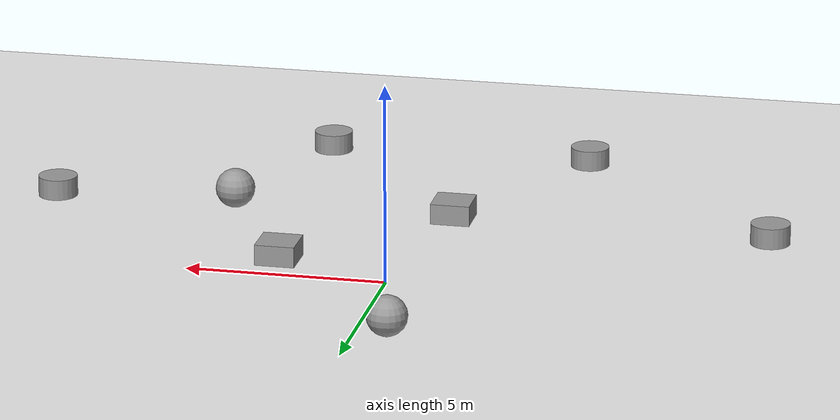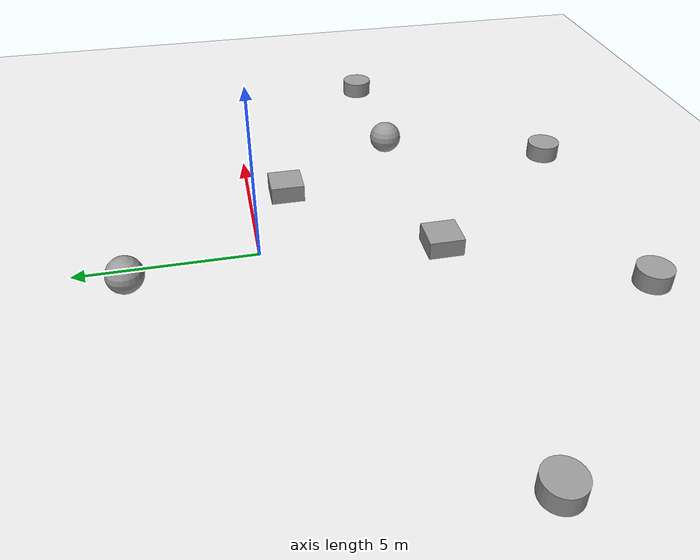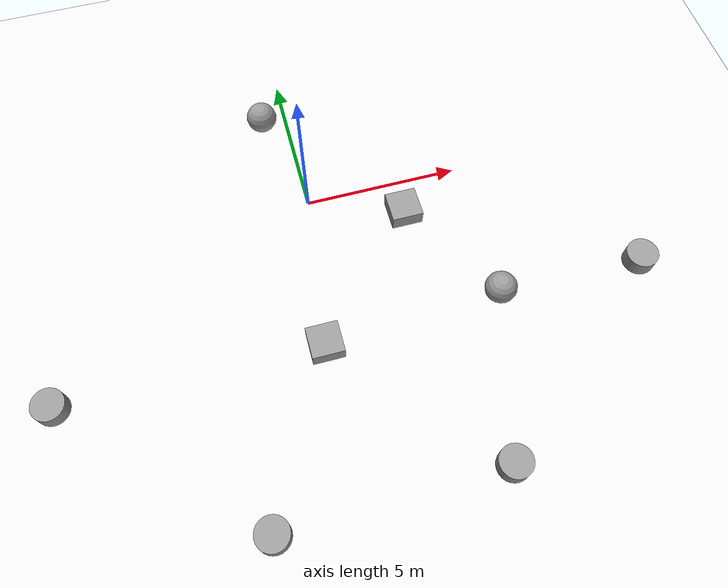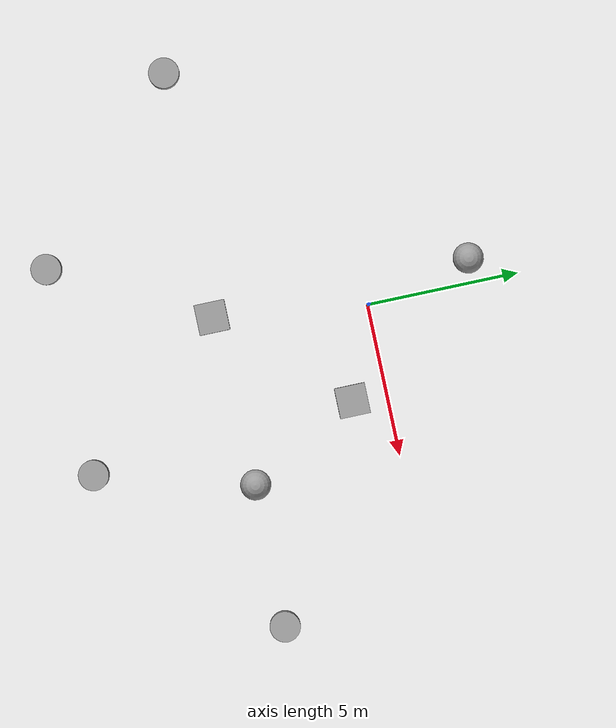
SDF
<sdf version="1.7">
 <world name="default">
  <model name="ground_plane">
   <static>1</static>
   <link name="link">
    <collision name="collision">
     <geometry><plane><normal>0 0 1</normal><size>100 100</size></plane></geometry>
     <surface><friction><ode><mu>100</mu><mu2>50</mu2></ode></friction></surface>
    </collision>
    <visual name="visual">
     <cast_shadows>0</cast_shadows>
     <geometry><plane><normal>0 0 1</normal><size>100 100</size></plane></geometry>
     <material>
      <script><uri>file://media/materials/scripts/gazebo.material</uri><name>Gazebo/White</name></script>
     </material>
    </visual>
   </link>
  </model>
  <model name="model2.4">
   <link name="link_4">
    <inertial>
     <mass>1</mass>
     <inertia><ixx>0.145833</ixx><ixy>0</ixy><ixz>0</ixz><iyy>0.145833</iyy><iyz>0</iyz><izz>0.125</izz></inertia>
    </inertial>
    <pose>-3e-06 0 0 0 -0 0</pose>
    <visual name="visual">
     <geometry><cylinder><radius>0.5</radius><length>1</length></cylinder></geometry>
     <material>
      <lighting>1</lighting>
      <script><uri>file://media/materials/scripts/gazebo.material</uri><name>Gazebo/Grey</name></script>
      <shader type="pixel"/>
     </material>
    </visual>
    <collision name="collision">
     <geometry><cylinder><radius>0.5</radius><length>1</length></cylinder></geometry>
     <surface>
      <friction>
       <ode><mu>1</mu><mu2>1</mu2><fdir1>0 0 0</fdir1><slip1>0</slip1><slip2>0</slip2></ode>
       <torsional>
        <coefficient>1</coefficient>
        <patch_radius>0</patch_radius>
        <surface_radius>0</surface_radius>
        <use_patch_radius>1</use_patch_radius>
        <ode><slip>0</slip></ode>
       </torsional>
      </friction>
      <bounce><restitution_coefficient>0</restitution_coefficient><threshold>1e+06</threshold></bounce>
      <contact>
       <collide_without_contact>0</collide_without_contact>
       <collide_without_contact_bitmask>1</collide_without_contact_bitmask>
       <collide_bitmask>1</collide_bitmask>
       <ode>
        <soft_cfm>0</soft_cfm>
        <soft_erp>0.2</soft_erp>
        <kp>1e+13</kp>
        <kd>1</kd>
        <max_vel>0.01</max_vel>
        <min_depth>0</min_depth>
       </ode>
       <bullet>
        <split_impulse>1</split_impulse>
        <split_impulse_penetration_threshold>-0.01</split_impulse_penetration_threshold>
        <soft_cfm>0</soft_cfm>
        <soft_erp>0.2</soft_erp>
        <kp>1e+13</kp>
        <kd>1</kd>
       </bullet>
      </contact>
     </surface>
    </collision>
   </link>
   <static>0</static>
   <pose>-8.72092 -4.88792 0 0 -0 0</pose>
  </model>
  <model name="model2.3">
   <link name="link_11">
    <inertial>
     <mass>1</mass>
     <inertia><ixx>0.145833</ixx><ixy>0</ixy><ixz>0</ixz><iyy>0.145833</iyy><iyz>0</iyz><izz>0.125</izz></inertia>
    </inertial>
    <pose>-3e-06 0 0 0 -0 0</pose>
    <visual name="visual">
     <geometry><cylinder><radius>0.5</radius><length>1</length></cylinder></geometry>
     <material>
      <lighting>1</lighting>
      <script><uri>file://media/materials/scripts/gazebo.material</uri><name>Gazebo/Grey</name></script>
      <shader type="pixel"/>
     </material>
    </visual>
    <collision name="collision">
     <geometry><cylinder><radius>0.5</radius><length>1</length></cylinder></geometry>
     <surface>
      <friction>
       <ode><mu>1</mu><mu2>1</mu2><fdir1>0 0 0</fdir1><slip1>0</slip1><slip2>0</slip2></ode>
       <torsional>
        <coefficient>1</coefficient>
        <patch_radius>0</patch_radius>
        <surface_radius>0</surface_radius>
        <use_patch_radius>1</use_patch_radius>
        <ode><slip>0</slip></ode>
       </torsional>
      </friction>
      <bounce><restitution_coefficient>0</restitution_coefficient><threshold>1e+06</threshold></bounce>
      <contact>
       <collide_without_contact>0</collide_without_contact>
       <collide_without_contact_bitmask>1</collide_without_contact_bitmask>
       <collide_bitmask>1</collide_bitmask>
       <ode>
        <soft_cfm>0</soft_cfm>
        <soft_erp>0.2</soft_erp>
        <kp>1e+13</kp>
        <kd>1</kd>
        <max_vel>0.01</max_vel>
        <min_depth>0</min_depth>
       </ode>
       <bullet>
        <split_impulse>1</split_impulse>
        <split_impulse_penetration_threshold>-0.01</split_impulse_penetration_threshold>
        <soft_cfm>0</soft_cfm>
        <soft_erp>0.2</soft_erp>
        <kp>1e+13</kp>
        <kd>1</kd>
       </bullet>
      </contact>
     </surface>
    </collision>
   </link>
   <static>0</static>
   <pose>-3.30049 -9.94824 0 0 -0 0</pose>
  </model>
  <model name="model2.5">
   <link name="link_5">
    <inertial>
     <mass>1</mass>
     <inertia><ixx>0.145833</ixx><ixy>0</ixy><ixz>0</ixz><iyy>0.145833</iyy><iyz>0</iyz><izz>0.125</izz></inertia>
    </inertial>
    <pose>-0 4e-06 0 0 -0 0</pose>
    <visual name="visual">
     <geometry><cylinder><radius>0.5</radius><length>1</length></cylinder></geometry>
     <material>
      <lighting>1</lighting>
      <script><uri>file://media/materials/scripts/gazebo.material</uri><name>Gazebo/Grey</name></script>
      <shader type="pixel"/>
     </material>
    </visual>
    <collision name="collision">
     <geometry><cylinder><radius>0.5</radius><length>1</length></cylinder></geometry>
     <surface>
      <friction>
       <ode><mu>1</mu><mu2>1</mu2><fdir1>0 0 0</fdir1><slip1>0</slip1><slip2>0</slip2></ode>
       <torsional>
        <coefficient>1</coefficient>
        <patch_radius>0</patch_radius>
        <surface_radius>0</surface_radius>
        <use_patch_radius>1</use_patch_radius>
        <ode><slip>0</slip></ode>
       </torsional>
      </friction>
      <bounce><restitution_coefficient>0</restitution_coefficient><threshold>1e+06</threshold></bounce>
      <contact>
       <collide_without_contact>0</collide_without_contact>
       <collide_without_contact_bitmask>1</collide_without_contact_bitmask>
       <collide_bitmask>1</collide_bitmask>
       <ode>
        <soft_cfm>0</soft_cfm>
        <soft_erp>0.2</soft_erp>
        <kp>1e+13</kp>
        <kd>1</kd>
        <max_vel>0.01</max_vel>
        <min_depth>0</min_depth>
       </ode>
       <bullet>
        <split_impulse>1</split_impulse>
        <split_impulse_penetration_threshold>-0.01</split_impulse_penetration_threshold>
        <soft_cfm>0</soft_cfm>
        <soft_erp>0.2</soft_erp>
        <kp>1e+13</kp>
        <kd>1</kd>
       </bullet>
      </contact>
     </surface>
    </collision>
   </link>
   <static>0</static>
   <pose>3.54549 -9.84256 0 0 -0 0</pose>
  </model>
  <model name="model2.6">
   <link name="link_6">
    <inertial>
     <mass>1</mass>
     <inertia><ixx>0.145833</ixx><ixy>0</ixy><ixz>0</ixz><iyy>0.145833</iyy><iyz>0</iyz><izz>0.125</izz></inertia>
    </inertial>
    <pose>-4e-06 4e-06 0 0 -0 0</pose>
    <visual name="visual">
     <geometry><cylinder><radius>0.5</radius><length>1</length></cylinder></geometry>
     <material>
      <lighting>1</lighting>
      <script><uri>file://media/materials/scripts/gazebo.material</uri><name>Gazebo/Grey</name></script>
      <shader type="pixel"/>
     </material>
    </visual>
    <collision name="collision">
     <geometry><cylinder><radius>0.5</radius><length>1</length></cylinder></geometry>
     <surface>
      <friction>
       <ode><mu>1</mu><mu2>1</mu2><fdir1>0 0 0</fdir1><slip1>0</slip1><slip2>0</slip2></ode>
       <torsional>
        <coefficient>1</coefficient>
        <patch_radius>0</patch_radius>
        <surface_radius>0</surface_radius>
        <use_patch_radius>1</use_patch_radius>
        <ode><slip>0</slip></ode>
       </torsional>
      </friction>
      <bounce><restitution_coefficient>0</restitution_coefficient><threshold>1e+06</threshold></bounce>
      <contact>
       <collide_without_contact>0</collide_without_contact>
       <collide_without_contact_bitmask>1</collide_without_contact_bitmask>
       <collide_bitmask>1</collide_bitmask>
       <ode>
        <soft_cfm>0</soft_cfm>
        <soft_erp>0.2</soft_erp>
        <kp>1e+13</kp>
        <kd>1</kd>
        <max_vel>0.01</max_vel>
        <min_depth>0</min_depth>
       </ode>
       <bullet>
        <split_impulse>1</split_impulse>
        <split_impulse_penetration_threshold>-0.01</split_impulse_penetration_threshold>
        <soft_cfm>0</soft_cfm>
        <soft_erp>0.2</soft_erp>
        <kp>1e+13</kp>
        <kd>1</kd>
       </bullet>
      </contact>
     </surface>
    </collision>
   </link>
   <static>0</static>
   <pose>9.63794 -4.80031 0 0 -0 0</pose>
  </model>
  <model name="Untitled1.1">
   <link name="link_0">
    <inertial>
     <mass>1</mass>
     <inertia>
      <ixx>0.166667</ixx>
      <ixy>0</ixy>
      <ixz>0</ixz>
      <iyy>0.166667</iyy>
      <iyz>0</iyz>
      <izz>0.166667</izz>
     </inertia>
    </inertial>
    <pose>1e-06 -1e-06 0 0 -0 0</pose>
    <visual name="visual">
     <geometry><box><size>1 1 1</size></box></geometry>
     <material>
      <lighting>1</lighting>
      <script><uri>file://media/materials/scripts/gazebo.material</uri><name>Gazebo/Grey</name></script>
      <shader type="pixel"/>
     </material>
    </visual>
    <collision name="collision">
     <geometry><box><size>1 1 1</size></box></geometry>
     <surface>
      <friction>
       <ode><mu>1</mu><mu2>1</mu2><fdir1>0 0 0</fdir1><slip1>0</slip1><slip2>0</slip2></ode>
       <torsional>
        <coefficient>1</coefficient>
        <patch_radius>0</patch_radius>
        <surface_radius>0</surface_radius>
        <use_patch_radius>1</use_patch_radius>
        <ode><slip>0</slip></ode>
       </torsional>
      </friction>
      <bounce><restitution_coefficient>0</restitution_coefficient><threshold>1e+06</threshold></bounce>
      <contact>
       <collide_without_contact>0</collide_without_contact>
       <collide_without_contact_bitmask>1</collide_without_contact_bitmask>
       <collide_bitmask>1</collide_bitmask>
       <ode>
        <soft_cfm>0</soft_cfm>
        <soft_erp>0.2</soft_erp>
        <kp>1e+13</kp>
        <kd>1</kd>
        <max_vel>0.01</max_vel>
        <min_depth>0</min_depth>
       </ode>
       <bullet>
        <split_impulse>1</split_impulse>
        <split_impulse_penetration_threshold>-0.01</split_impulse_penetration_threshold>
        <soft_cfm>0</soft_cfm>
        <soft_erp>0.2</soft_erp>
        <kp>1e+13</kp>
        <kd>1</kd>
       </bullet>
      </contact>
     </surface>
    </collision>
   </link>
   <static>0</static>
   <pose>-0.657097 -5.02189 0 0 -0 0</pose>
  </model>
  <model name="Untitled1.2">
   <link name="link_1">
    <inertial>
     <mass>1</mass>
     <inertia><ixx>0.1</ixx><ixy>0</ixy><ixz>0</ixz><iyy>0.1</iyy><iyz>0</iyz><izz>0.1</izz></inertia>
    </inertial>
    <pose>-4.09245 4.17499 0.5 0 -0 0</pose>
    <visual name="visual">
     <geometry><sphere><radius>0.5</radius></sphere></geometry>
     <material>
      <lighting>1</lighting>
      <script><uri>file://media/materials/scripts/gazebo.material</uri><name>Gazebo/Grey</name></script>
      <shader type="pixel"/>
     </material>
    </visual>
    <collision name="collision">
     <geometry><sphere><radius>0.5</radius></sphere></geometry>
     <surface>
      <friction>
       <ode><mu>1</mu><mu2>1</mu2><fdir1>0 0 0</fdir1><slip1>0</slip1><slip2>0</slip2></ode>
       <torsional>
        <coefficient>1</coefficient>
        <patch_radius>0</patch_radius>
        <surface_radius>0</surface_radius>
        <use_patch_radius>1</use_patch_radius>
        <ode><slip>0</slip></ode>
       </torsional>
      </friction>
      <bounce><restitution_coefficient>0</restitution_coefficient><threshold>1e+06</threshold></bounce>
      <contact>
       <collide_without_contact>0</collide_without_contact>
       <collide_without_contact_bitmask>1</collide_without_contact_bitmask>
       <collide_bitmask>1</collide_bitmask>
       <ode>
        <soft_cfm>0</soft_cfm>
        <soft_erp>0.2</soft_erp>
        <kp>1e+13</kp>
        <kd>1</kd>
        <max_vel>0.01</max_vel>
        <min_depth>0</min_depth>
       </ode>
       <bullet>
        <split_impulse>1</split_impulse>
        <split_impulse_penetration_threshold>-0.01</split_impulse_penetration_threshold>
        <soft_cfm>0</soft_cfm>
        <soft_erp>0.2</soft_erp>
        <kp>1e+13</kp>
        <kd>1</kd>
       </bullet>
      </contact>
     </surface>
    </collision>
   </link>
   <static>0</static>
   <pose>3.29234 -0.6796 0 0 -0 0</pose>
  </model>
  <model name="Untitled1.2_0">
   <link name="link_1">
    <inertial>
     <mass>1</mass>
     <inertia><ixx>0.1</ixx><ixy>0</ixy><ixz>0</ixz><iyy>0.1</iyy><iyz>0</iyz><izz>0.1</izz></inertia>
    </inertial>
    <pose>-4.09245 4.17499 0.5 0 -0 0</pose>
    <visual name="visual">
     <geometry><sphere><radius>0.5</radius></sphere></geometry>
     <material>
      <lighting>1</lighting>
      <script><uri>file://media/materials/scripts/gazebo.material</uri><name>Gazebo/Grey</name></script>
      <shader type="pixel"/>
     </material>
    </visual>
    <collision name="collision">
     <geometry><sphere><radius>0.5</radius></sphere></geometry>
     <surface>
      <friction>
       <ode><mu>1</mu><mu2>1</mu2><fdir1>0 0 0</fdir1><slip1>0</slip1><slip2>0</slip2></ode>
       <torsional>
        <coefficient>1</coefficient>
        <patch_radius>0</patch_radius>
        <surface_radius>0</surface_radius>
        <use_patch_radius>1</use_patch_radius>
        <ode><slip>0</slip></ode>
       </torsional>
      </friction>
      <bounce><restitution_coefficient>0</restitution_coefficient><threshold>1e+06</threshold></bounce>
      <contact>
       <collide_without_contact>0</collide_without_contact>
       <collide_without_contact_bitmask>1</collide_without_contact_bitmask>
       <collide_bitmask>1</collide_bitmask>
       <ode>
        <soft_cfm>0</soft_cfm>
        <soft_erp>0.2</soft_erp>
        <kp>1e+13</kp>
        <kd>1</kd>
        <max_vel>0.01</max_vel>
        <min_depth>0</min_depth>
       </ode>
       <bullet>
        <split_impulse>1</split_impulse>
        <split_impulse_penetration_threshold>-0.01</split_impulse_penetration_threshold>
        <soft_cfm>0</soft_cfm>
        <soft_erp>0.2</soft_erp>
        <kp>1e+13</kp>
        <kd>1</kd>
       </bullet>
      </contact>
     </surface>
    </collision>
   </link>
   <static>0</static>
   <pose>9.03415 -8.94405 0 0 -0 0</pose>
  </model>
  <model name="Untitled1.1_1">
   <link name="link_0">
    <inertial>
     <mass>1</mass>
     <inertia>
      <ixx>0.166667</ixx>
      <ixy>0</ixy>
      <ixz>0</ixz>
      <iyy>0.166667</iyy>
      <iyz>0</iyz>
      <izz>0.166667</izz>
     </inertia>
    </inertial>
    <pose>1e-06 -1e-06 0 0 -0 0</pose>
    <visual name="visual">
     <geometry><box><size>1 1 1</size></box></geometry>
     <material>
      <lighting>1</lighting>
      <script><uri>file://media/materials/scripts/gazebo.material</uri><name>Gazebo/Grey</name></script>
      <shader type="pixel"/>
     </material>
    </visual>
    <collision name="collision">
     <geometry><box><size>1 1 1</size></box></geometry>
     <surface>
      <friction>
       <ode><mu>1</mu><mu2>1</mu2><fdir1>0 0 0</fdir1><slip1>0</slip1><slip2>0</slip2></ode>
       <torsional>
        <coefficient>1</coefficient>
        <patch_radius>0</patch_radius>
        <surface_radius>0</surface_radius>
        <use_patch_radius>1</use_patch_radius>
        <ode><slip>0</slip></ode>
       </torsional>
      </friction>
      <bounce><restitution_coefficient>0</restitution_coefficient><threshold>1e+06</threshold></bounce>
      <contact>
       <collide_without_contact>0</collide_without_contact>
       <collide_without_contact_bitmask>1</collide_without_contact_bitmask>
       <collide_bitmask>1</collide_bitmask>
       <ode>
        <soft_cfm>0</soft_cfm>
        <soft_erp>0.2</soft_erp>
        <kp>1e+13</kp>
        <kd>1</kd>
        <max_vel>0.01</max_vel>
        <min_depth>0</min_depth>
       </ode>
       <bullet>
        <split_impulse>1</split_impulse>
        <split_impulse_penetration_threshold>-0.01</split_impulse_penetration_threshold>
        <soft_cfm>0</soft_cfm>
        <soft_erp>0.2</soft_erp>
        <kp>1e+13</kp>
        <kd>1</kd>
       </bullet>
      </contact>
     </surface>
    </collision>
   </link>
   <static>0</static>
   <pose>2.93444 -1.1378 0 0 -0 0</pose>
  </model>
 </world>
</sdf>
